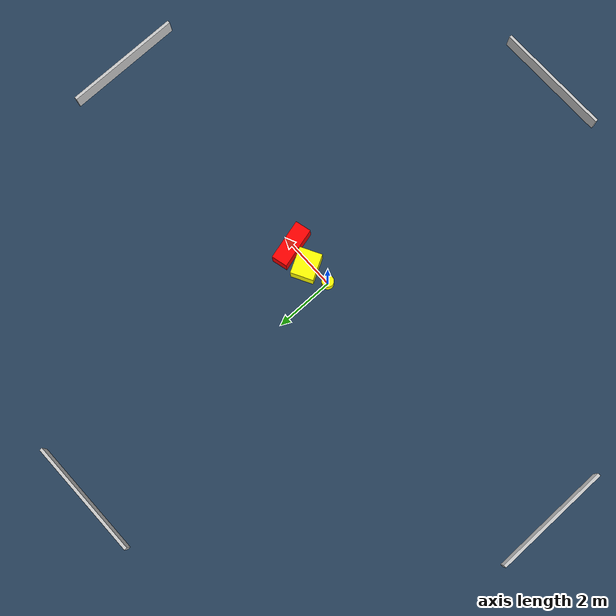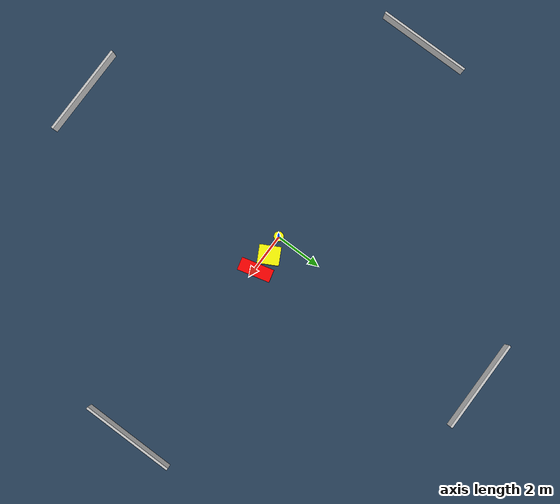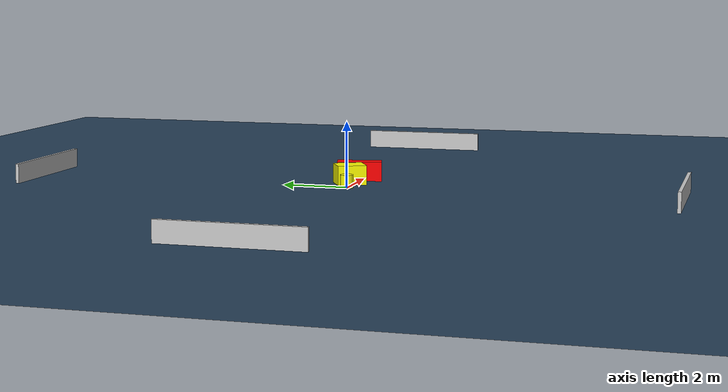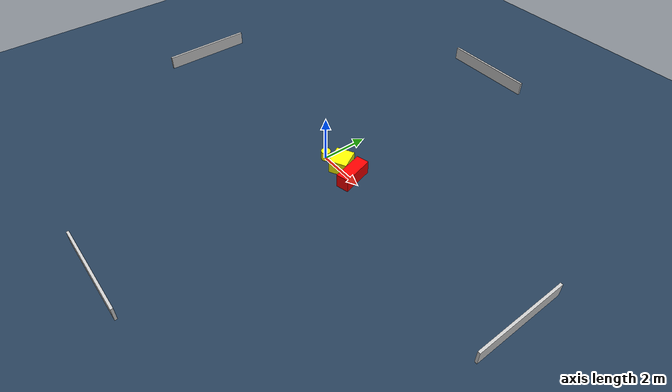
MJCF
<?xml version="1.0" ?>
<mujoco model="generated_environment">
  <option timestep="0.01" integrator="RK4" cone="elliptic"/>
  <default>
    <geom density="1"/>
  </default>
  <asset>
    <texture builtin="gradient" height="3072" name="skybox" rgb1="0.3 0.5 0.7" rgb2="0 0 0" type="skybox" width="512"/>
    <texture builtin="checker" height="300" name="groundplane" rgb1="0.2 0.3 0.4" rgb2="0.1 0.2 0.3" type="2d" width="300"/>
    <material name="groundplane" reflectance="0.2" texrepeat="5 5" texture="groundplane"/>
  </asset>
  <worldbody>
    <light dir="0 0 -1" directional="true" pos="0 0 1.5"/>
    <geom condim="3" friction="0.5 0.005 0.001" material="groundplane" name="floor" pos="0 0 0" size="0 0 0.05" type="plane"/>
    <body name="walls">
      <geom name="wall_1" condim="4" pos="-10.0 0.0 0.3" rgba="0.800000011920929 0.800000011920929 0.800000011920929 1.0" size="0.05 2.0 0.3" type="box"/>
      <geom name="wall_2" condim="4" pos="10.0 0.0 0.3" rgba="0.800000011920929 0.800000011920929 0.800000011920929 1.0" size="0.05 2.0 0.3" type="box"/>
      <geom name="wall_3" condim="4" pos="0.0 -10.0 0.3" rgba="0.800000011920929 0.800000011920929 0.800000011920929 1.0" size="2.0 0.05 0.3" type="box"/>
      <geom name="wall_4" condim="4" pos="0.0 10.0 0.3" rgba="0.800000011920929 0.800000011920929 0.800000011920929 1.0" size="2.0 0.05 0.3" type="box"/>
    </body>
    <body name="robot">
      <joint name="joint_x" type="slide" pos="0 0 0" axis="1 0 0"/>
      <joint name="joint_y" type="slide" pos="0 0 0" axis="0 1 0"/>
      <geom name="robot" type="cylinder" pos="0.0 0.0 0.2" size="0.2 0.2 0.0" mass="5.0" friction="1.0 0.005 0.0001" condim="4" rgba="1.0 1.0 0.0 1.0"/>
    </body>
    <body name="obstacle_1_movable">
      <geom name="obstacle_1_movable" condim="4" pos="0.8408478908710639 0.1463298786310726 0.3" euler="0 0 118.21365397217983" friction="0.0 0.005 0.001" rgba="1.0 1.0 0.0 1.0" size="0.44665131868443564 0.3833052095020998 0.3" type="box" mass="0.1"/>
      <joint type="free"/>
    </body>
    <body name="obstacle_2_static">
      <geom name="obstacle_2_static" condim="4" pos="1.641894946513214 0.0665082156225094 0.3" euler="0 0 194.32909242616614" friction="0.0 0.005 0.001" rgba="1.0 0.0 0.0 1.0" size="0.2695855241503827 0.6902523551928772 0.3" type="box"/>
    </body>
  </worldbody>
  <actuator>
    <motor name="actuator_x" joint="joint_x" gear="1" ctrlrange="-1 1"/>
    <motor name="actuator_y" joint="joint_y" gear="1" ctrlrange="-1 1"/>
  </actuator>
</mujoco>
